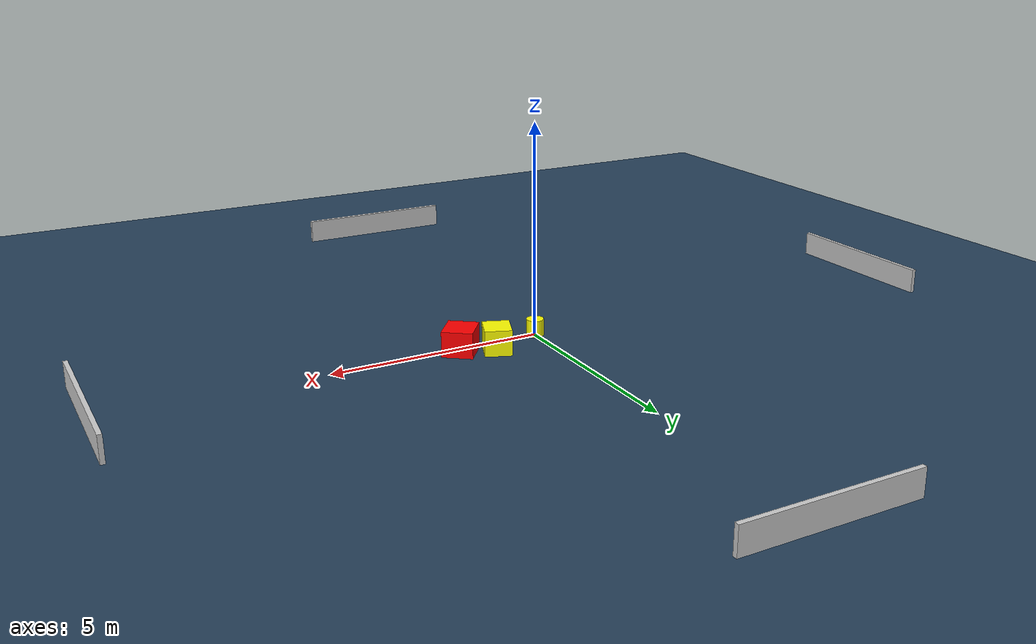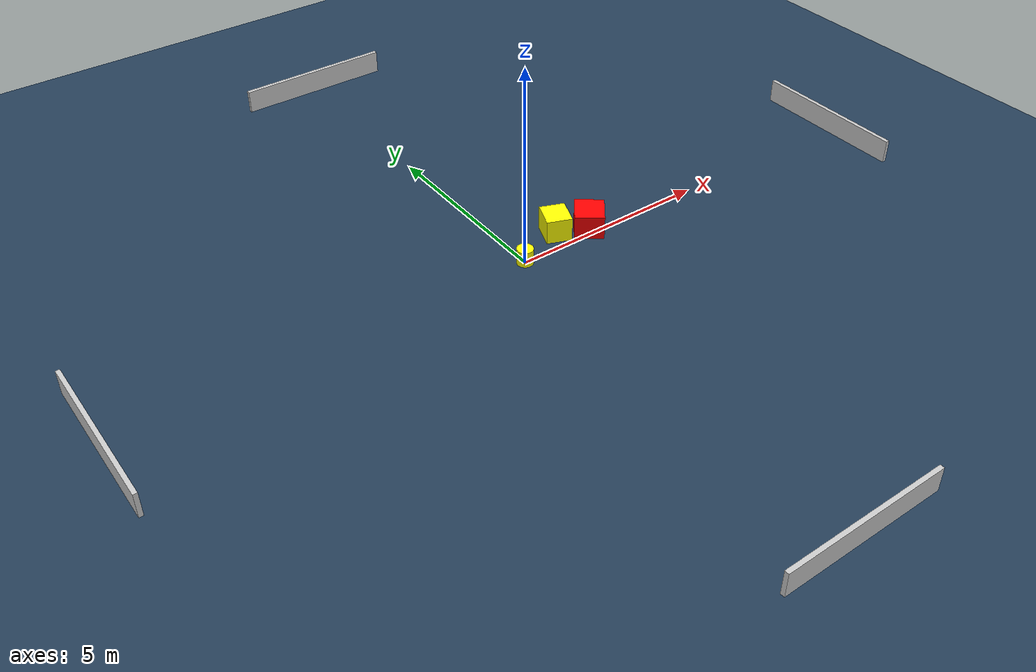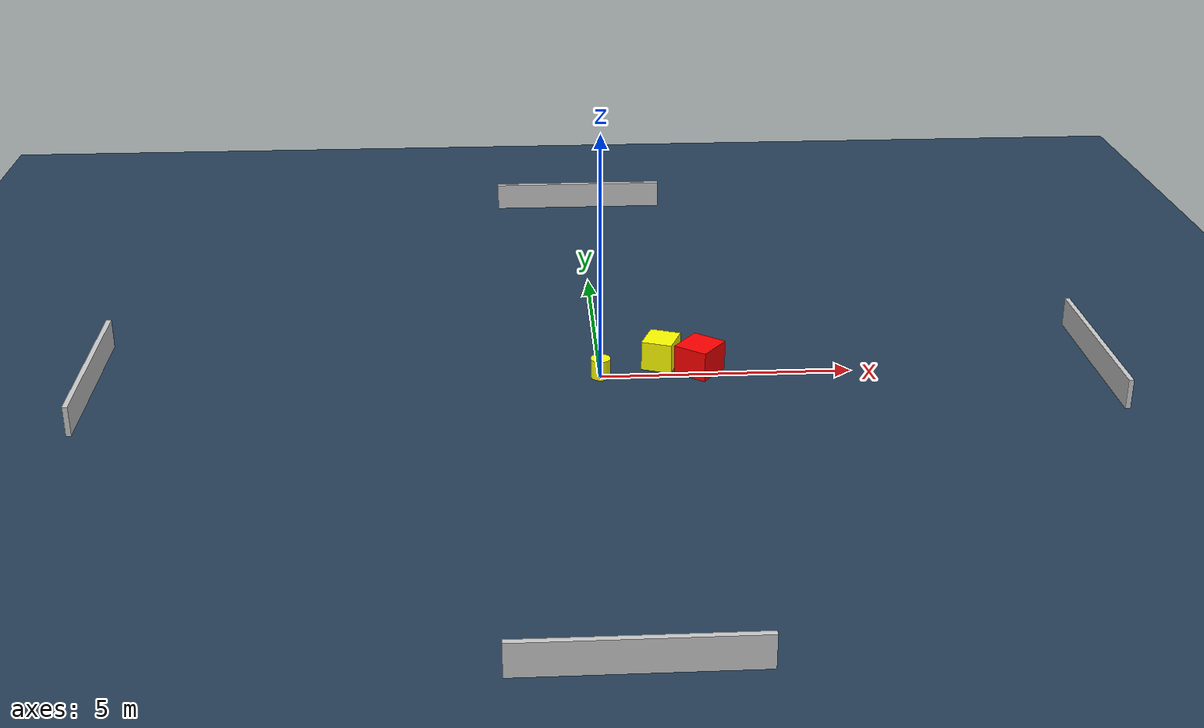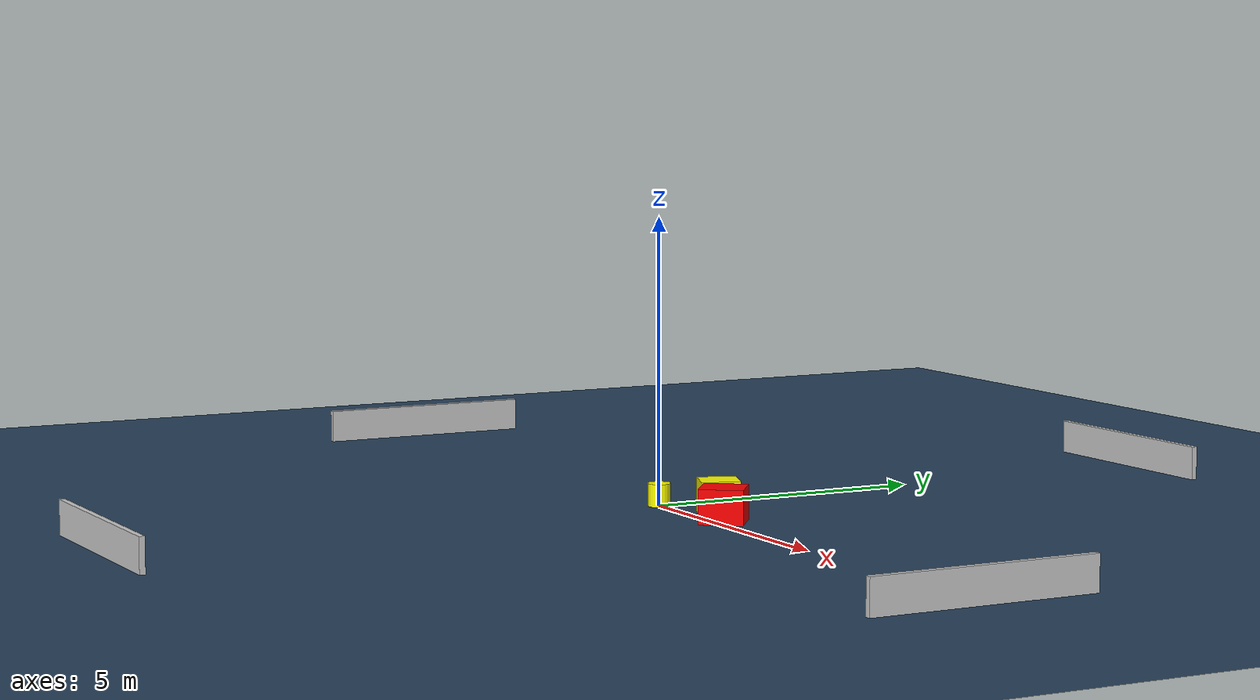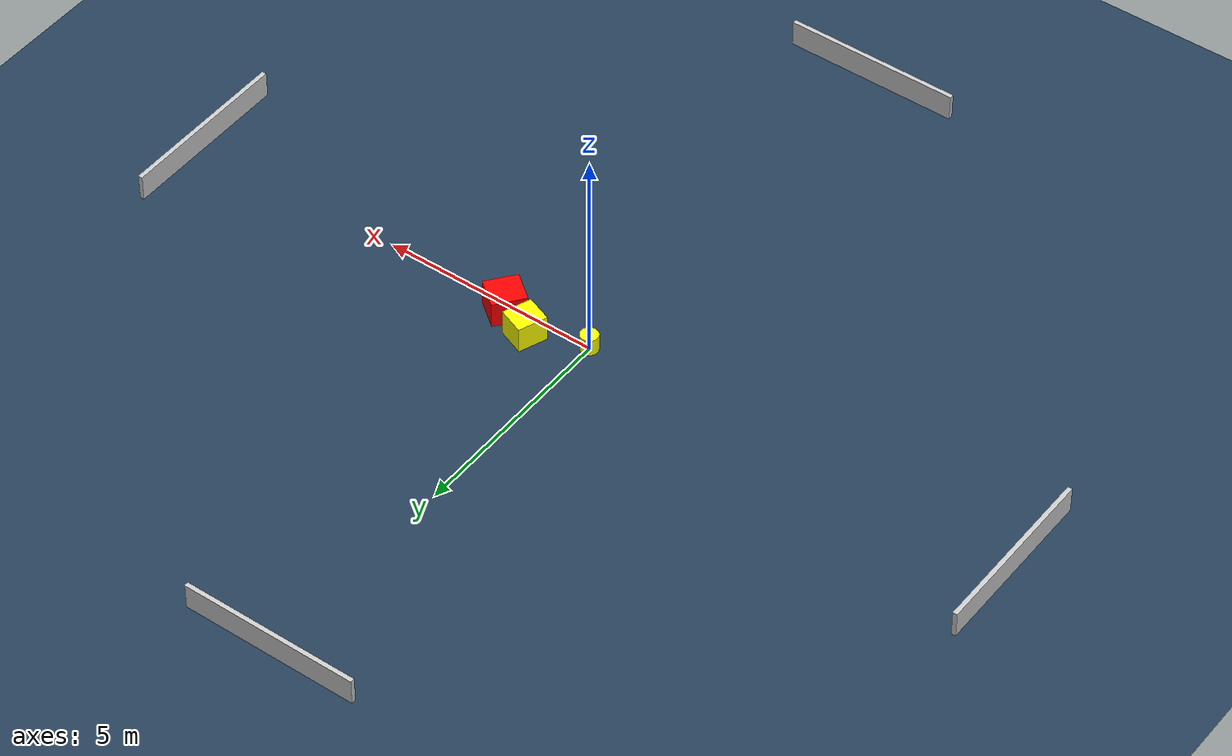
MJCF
<?xml version="1.0" ?>
<mujoco model="generated_environment">
  <option timestep="0.01" integrator="RK4" cone="elliptic"/>
  <default>
    <geom density="1"/>
  </default>
  <asset>
    <texture builtin="gradient" height="3072" name="skybox" rgb1="0.3 0.5 0.7" rgb2="0 0 0" type="skybox" width="512"/>
    <texture builtin="checker" height="300" name="groundplane" rgb1="0.2 0.3 0.4" rgb2="0.1 0.2 0.3" type="2d" width="300"/>
    <material name="groundplane" reflectance="0.2" texrepeat="5 5" texture="groundplane"/>
  </asset>
  <worldbody>
    <light dir="0 0 -1" directional="true" pos="0 0 1.5"/>
    <geom condim="3" friction="0.5 0.005 0.001" material="groundplane" name="floor" pos="0 0 0" size="0 0 0.05" type="plane"/>
    <body name="walls">
      <geom name="wall_1" condim="4" pos="-10.0 0.0 0.3" rgba="0.800000011920929 0.800000011920929 0.800000011920929 1.0" size="0.05 2.0 0.3" type="box"/>
      <geom name="wall_2" condim="4" pos="10.0 0.0 0.3" rgba="0.800000011920929 0.800000011920929 0.800000011920929 1.0" size="0.05 2.0 0.3" type="box"/>
      <geom name="wall_3" condim="4" pos="0.0 -10.0 0.3" rgba="0.800000011920929 0.800000011920929 0.800000011920929 1.0" size="2.0 0.05 0.3" type="box"/>
      <geom name="wall_4" condim="4" pos="0.0 10.0 0.3" rgba="0.800000011920929 0.800000011920929 0.800000011920929 1.0" size="2.0 0.05 0.3" type="box"/>
    </body>
    <body name="robot">
      <joint name="joint_x" type="slide" pos="0 0 0" axis="1 0 0"/>
      <joint name="joint_y" type="slide" pos="0 0 0" axis="0 1 0"/>
      <geom name="robot" type="cylinder" pos="0.0 0.0 0.2" size="0.2 0.2 0.0" mass="5.0" friction="1.0 0.005 0.0001" condim="4" rgba="1.0 1.0 0.0 1.0"/>
    </body>
    <body name="obstacle_1_movable">
      <geom name="obstacle_1_movable" condim="4" pos="1.2422321366929547 0.48397381046229077 0.3" euler="0 0 68.86079485804119" friction="0.0 0.005 0.001" rgba="1.0 1.0 0.0 1.0" size="0.3384951552412382 0.3104564321645573 0.3" type="box" mass="0.1"/>
      <joint type="free"/>
    </body>
    <body name="obstacle_2_static">
      <geom name="obstacle_2_static" condim="4" pos="1.9900170607761427 0.15463672353497057 0.3" euler="0 0 232.40802229008727" friction="0.0 0.005 0.001" rgba="1.0 0.0 0.0 1.0" size="0.3834910323963986 0.35583380536154274 0.3" type="box"/>
    </body>
  </worldbody>
  <actuator>
    <motor name="actuator_x" joint="joint_x" gear="1" ctrlrange="-1 1"/>
    <motor name="actuator_y" joint="joint_y" gear="1" ctrlrange="-1 1"/>
  </actuator>
</mujoco>
